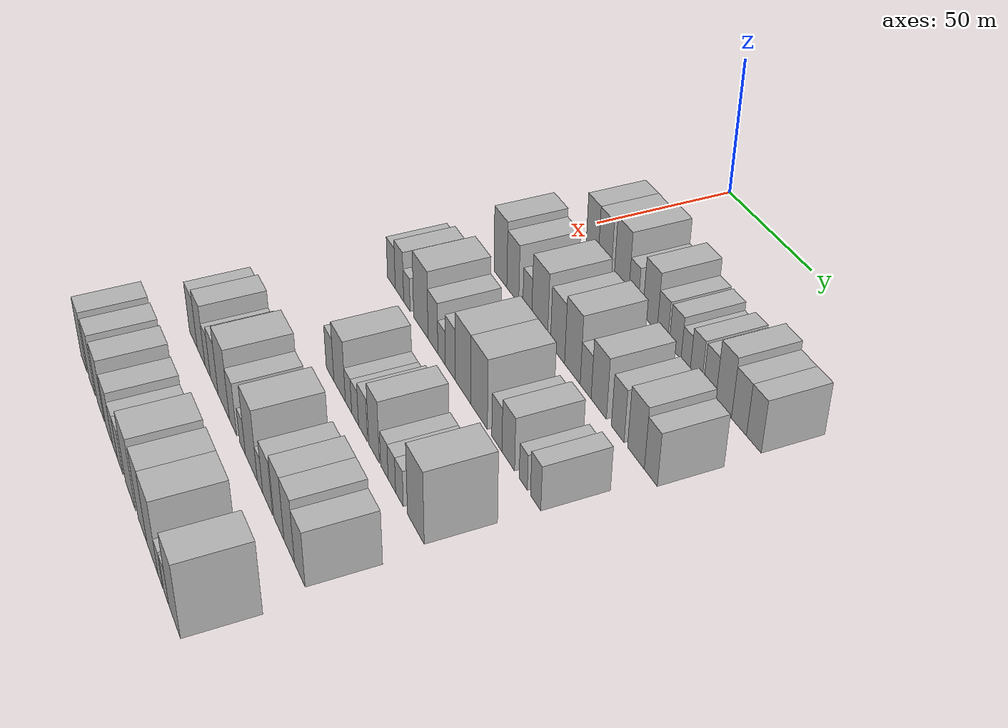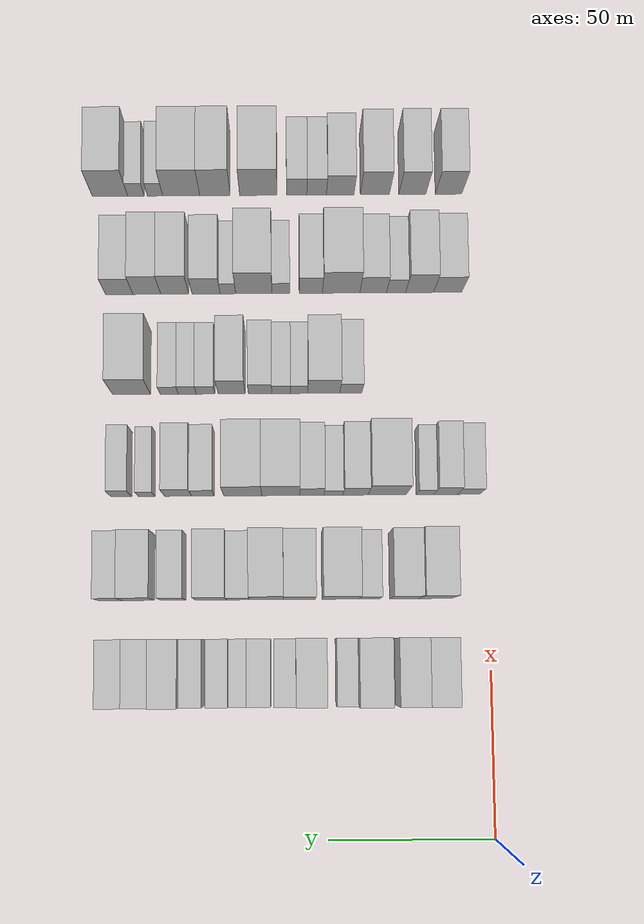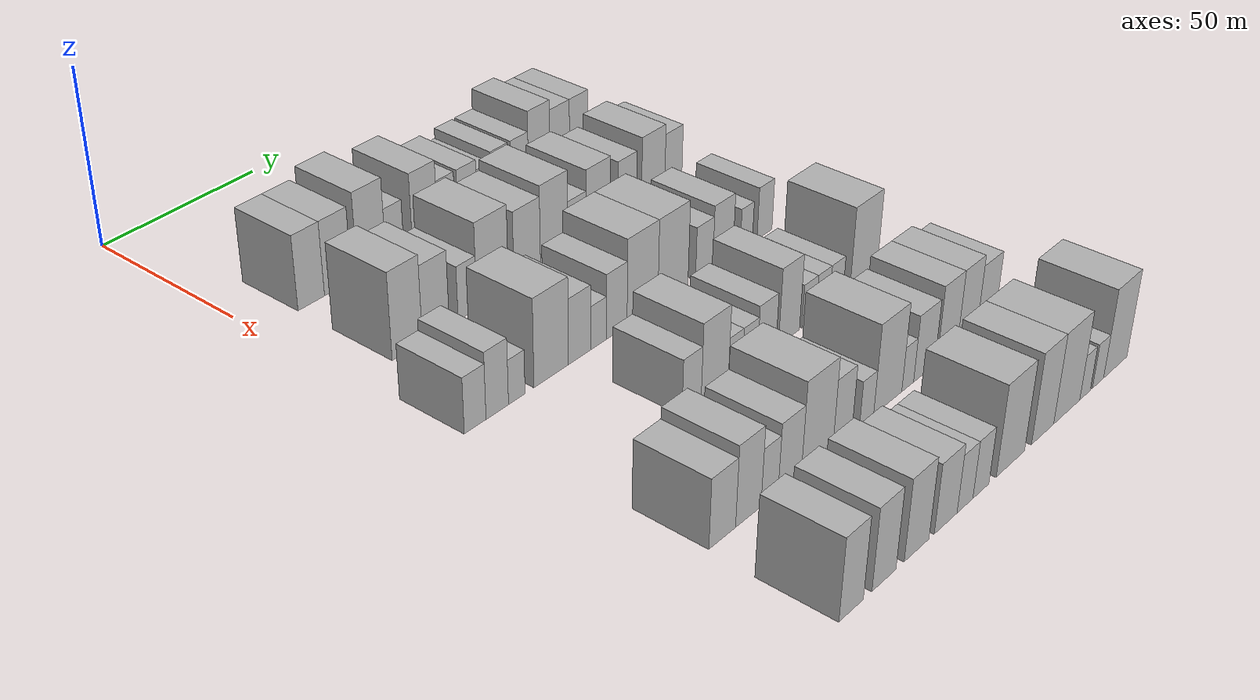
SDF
<sdf version="1.6">
 <world name="default">
  <model name="building_65">
   <static>1</static>
   <pose>50.0000 16.0996 0 0.000000 0.000000 0.000000</pose>
   <link name="link">
    <pose>0 0 10.50 0 0 0</pose>
    <collision name="collision"><geometry><box><size>20.0000 8.6231 21.0000</size></box></geometry></collision>
    <visual name="visual">
     <cast_shadows>0</cast_shadows>
     <geometry><box><size>20.0000 8.6231 21.0000</size></box></geometry>
     <material>
      <script>
       <uri>model://HANNAS_wall/materials/scripts</uri>
       <uri>model://HANNAS_wall/materials/textures</uri>
       <name>vrc/HANNAS_wall</name>
      </script>
     </material>
    </visual>
   </link>
  </model>
  <model name="building_66">
   <static>1</static>
   <pose>50.0000 24.9239 0 0.000000 0.000000 0.000000</pose>
   <link name="link">
    <pose>0 0 10.50 0 0 0</pose>
    <collision name="collision"><geometry><box><size>20.0000 9.0255 21.0000</size></box></geometry></collision>
    <visual name="visual">
     <cast_shadows>0</cast_shadows>
     <geometry><box><size>20.0000 9.0255 21.0000</size></box></geometry>
     <material>
      <script>
       <uri>model://HANNAS_wall/materials/scripts</uri>
       <uri>model://HANNAS_wall/materials/textures</uri>
       <name>vrc/HANNAS_wall</name>
      </script>
     </material>
    </visual>
   </link>
  </model>
  <model name="building_67">
   <static>1</static>
   <pose>50.0000 36.3254 0 0.000000 0.000000 0.000000</pose>
   <link name="link">
    <pose>0 0 12.00 0 0 0</pose>
    <collision name="collision"><geometry><box><size>20.0000 9.7776 24.0000</size></box></geometry></collision>
    <visual name="visual">
     <cast_shadows>0</cast_shadows>
     <geometry><box><size>20.0000 9.7776 24.0000</size></box></geometry>
     <material>
      <script>
       <uri>model://HANNAS_wall/materials/scripts</uri>
       <uri>model://HANNAS_wall/materials/textures</uri>
       <name>vrc/HANNAS_wall</name>
      </script>
     </material>
    </visual>
   </link>
  </model>
  <model name="building_68">
   <static>1</static>
   <pose>50.0000 44.3405 0 0.000000 0.000000 0.000000</pose>
   <link name="link">
    <pose>0 0 7.50 0 0 0</pose>
    <collision name="collision"><geometry><box><size>20.0000 6.2526 15.0000</size></box></geometry></collision>
    <visual name="visual">
     <cast_shadows>0</cast_shadows>
     <geometry><box><size>20.0000 6.2526 15.0000</size></box></geometry>
     <material>
      <script>
       <uri>model://HANNAS_wall/materials/scripts</uri>
       <uri>model://HANNAS_wall/materials/textures</uri>
       <name>vrc/HANNAS_wall</name>
      </script>
     </material>
    </visual>
   </link>
  </model>
  <model name="building_69">
   <static>1</static>
   <pose>50.0000 55.0183 0 0.000000 0.000000 0.000000</pose>
   <link name="link">
    <pose>0 0 10.50 0 0 0</pose>
    <collision name="collision"><geometry><box><size>20.0000 9.1030 21.0000</size></box></geometry></collision>
    <visual name="visual">
     <cast_shadows>0</cast_shadows>
     <geometry><box><size>20.0000 9.1030 21.0000</size></box></geometry>
     <material>
      <script>
       <uri>model://HANNAS_wall/materials/scripts</uri>
       <uri>model://HANNAS_wall/materials/textures</uri>
       <name>vrc/HANNAS_wall</name>
      </script>
     </material>
    </visual>
   </link>
  </model>
  <model name="building_70">
   <static>1</static>
   <pose>50.0000 62.8047 0 0.000000 0.000000 0.000000</pose>
   <link name="link">
    <pose>0 0 7.50 0 0 0</pose>
    <collision name="collision"><geometry><box><size>20.0000 6.4698 15.0000</size></box></geometry></collision>
    <visual name="visual">
     <cast_shadows>0</cast_shadows>
     <geometry><box><size>20.0000 6.4698 15.0000</size></box></geometry>
     <material>
      <script>
       <uri>model://HANNAS_wall/materials/scripts</uri>
       <uri>model://HANNAS_wall/materials/textures</uri>
       <name>vrc/HANNAS_wall</name>
      </script>
     </material>
    </visual>
   </link>
  </model>
  <model name="building_71">
   <static>1</static>
   <pose>50.0000 70.6055 0 0.000000 0.000000 0.000000</pose>
   <link name="link">
    <pose>0 0 7.50 0 0 0</pose>
    <collision name="collision"><geometry><box><size>20.0000 7.1319 15.0000</size></box></geometry></collision>
    <visual name="visual">
     <cast_shadows>0</cast_shadows>
     <geometry><box><size>20.0000 7.1319 15.0000</size></box></geometry>
     <material>
      <script>
       <uri>model://HANNAS_wall/materials/scripts</uri>
       <uri>model://HANNAS_wall/materials/textures</uri>
       <name>vrc/HANNAS_wall</name>
      </script>
     </material>
    </visual>
   </link>
  </model>
  <model name="building_72">
   <static>1</static>
   <pose>50.0000 76.8908 0 0.000000 0.000000 0.000000</pose>
   <link name="link">
    <pose>0 0 6.00 0 0 0</pose>
    <collision name="collision"><geometry><box><size>20.0000 5.4387 12.0000</size></box></geometry></collision>
    <visual name="visual">
     <cast_shadows>0</cast_shadows>
     <geometry><box><size>20.0000 5.4387 12.0000</size></box></geometry>
     <material>
      <script>
       <uri>model://HANNAS_wall/materials/scripts</uri>
       <uri>model://HANNAS_wall/materials/textures</uri>
       <name>vrc/HANNAS_wall</name>
      </script>
     </material>
    </visual>
   </link>
  </model>
  <model name="building_73">
   <static>1</static>
   <pose>50.0000 82.9509 0 0.000000 0.000000 0.000000</pose>
   <link name="link">
    <pose>0 0 7.50 0 0 0</pose>
    <collision name="collision"><geometry><box><size>20.0000 6.6815 15.0000</size></box></geometry></collision>
    <visual name="visual">
     <cast_shadows>0</cast_shadows>
     <geometry><box><size>20.0000 6.6815 15.0000</size></box></geometry>
     <material>
      <script>
       <uri>model://HANNAS_wall/materials/scripts</uri>
       <uri>model://HANNAS_wall/materials/textures</uri>
       <name>vrc/HANNAS_wall</name>
      </script>
     </material>
    </visual>
   </link>
  </model>
  <model name="building_74">
   <static>1</static>
   <pose>50.0000 90.7151 0 0.000000 0.000000 0.000000</pose>
   <link name="link">
    <pose>0 0 7.50 0 0 0</pose>
    <collision name="collision"><geometry><box><size>20.0000 6.8470 15.0000</size></box></geometry></collision>
    <visual name="visual">
     <cast_shadows>0</cast_shadows>
     <geometry><box><size>20.0000 6.8470 15.0000</size></box></geometry>
     <material>
      <script>
       <uri>model://HANNAS_wall/materials/scripts</uri>
       <uri>model://HANNAS_wall/materials/textures</uri>
       <name>vrc/HANNAS_wall</name>
      </script>
     </material>
    </visual>
   </link>
  </model>
  <model name="building_75">
   <static>1</static>
   <pose>50.0000 98.4572 0 0.000000 0.000000 0.000000</pose>
   <link name="link">
    <pose>0 0 10.50 0 0 0</pose>
    <collision name="collision"><geometry><box><size>20.0000 8.6371 21.0000</size></box></geometry></collision>
    <visual name="visual">
     <cast_shadows>0</cast_shadows>
     <geometry><box><size>20.0000 8.6371 21.0000</size></box></geometry>
     <material>
      <script>
       <uri>model://HANNAS_wall/materials/scripts</uri>
       <uri>model://HANNAS_wall/materials/textures</uri>
       <name>vrc/HANNAS_wall</name>
      </script>
     </material>
    </visual>
   </link>
  </model>
  <model name="building_76">
   <static>1</static>
   <pose>50.0000 106.7732 0 0.000000 0.000000 0.000000</pose>
   <link name="link">
    <pose>0 0 9.00 0 0 0</pose>
    <collision name="collision"><geometry><box><size>20.0000 7.9948 18.0000</size></box></geometry></collision>
    <visual name="visual">
     <cast_shadows>0</cast_shadows>
     <geometry><box><size>20.0000 7.9948 18.0000</size></box></geometry>
     <material>
      <script>
       <uri>model://HANNAS_wall/materials/scripts</uri>
       <uri>model://HANNAS_wall/materials/textures</uri>
       <name>vrc/HANNAS_wall</name>
      </script>
     </material>
    </visual>
   </link>
  </model>
  <model name="building_77">
   <static>1</static>
   <pose>50.0000 114.6159 0 0.000000 0.000000 0.000000</pose>
   <link name="link">
    <pose>0 0 9.00 0 0 0</pose>
    <collision name="collision"><geometry><box><size>20.0000 7.6906 18.0000</size></box></geometry></collision>
    <visual name="visual">
     <cast_shadows>0</cast_shadows>
     <geometry><box><size>20.0000 7.6906 18.0000</size></box></geometry>
     <material>
      <script>
       <uri>model://HANNAS_wall/materials/scripts</uri>
       <uri>model://HANNAS_wall/materials/textures</uri>
       <name>vrc/HANNAS_wall</name>
      </script>
     </material>
    </visual>
   </link>
  </model>
  <model name="building_190">
   <static>1</static>
   <pose>82.0000 16.7687 0 0.000000 0.000000 0.000000</pose>
   <link name="link">
    <pose>0 0 12.00 0 0 0</pose>
    <collision name="collision"><geometry><box><size>20.0000 9.9209 24.0000</size></box></geometry></collision>
    <visual name="visual">
     <cast_shadows>0</cast_shadows>
     <geometry><box><size>20.0000 9.9209 24.0000</size></box></geometry>
     <material>
      <script>
       <uri>model://HANNAS_wall/materials/scripts</uri>
       <uri>model://HANNAS_wall/materials/textures</uri>
       <name>vrc/HANNAS_wall</name>
      </script>
     </material>
    </visual>
   </link>
  </model>
  <model name="building_191">
   <static>1</static>
   <pose>82.0000 26.2301 0 0.000000 0.000000 0.000000</pose>
   <link name="link">
    <pose>0 0 10.50 0 0 0</pose>
    <collision name="collision"><geometry><box><size>20.0000 9.0018 21.0000</size></box></geometry></collision>
    <visual name="visual">
     <cast_shadows>0</cast_shadows>
     <geometry><box><size>20.0000 9.0018 21.0000</size></box></geometry>
     <material>
      <script>
       <uri>model://HANNAS_wall/materials/scripts</uri>
       <uri>model://HANNAS_wall/materials/textures</uri>
       <name>vrc/HANNAS_wall</name>
      </script>
     </material>
    </visual>
   </link>
  </model>
  <model name="building_192">
   <static>1</static>
   <pose>82.0000 36.9610 0 0.000000 0.000000 0.000000</pose>
   <link name="link">
    <pose>0 0 7.50 0 0 0</pose>
    <collision name="collision"><geometry><box><size>20.0000 6.4601 15.0000</size></box></geometry></collision>
    <visual name="visual">
     <cast_shadows>0</cast_shadows>
     <geometry><box><size>20.0000 6.4601 15.0000</size></box></geometry>
     <material>
      <script>
       <uri>model://HANNAS_wall/materials/scripts</uri>
       <uri>model://HANNAS_wall/materials/textures</uri>
       <name>vrc/HANNAS_wall</name>
      </script>
     </material>
    </visual>
   </link>
  </model>
  <model name="building_193">
   <static>1</static>
   <pose>82.0000 45.8005 0 0.000000 0.000000 0.000000</pose>
   <link name="link">
    <pose>0 0 12.00 0 0 0</pose>
    <collision name="collision"><geometry><box><size>20.0000 11.2189 24.0000</size></box></geometry></collision>
    <visual name="visual">
     <cast_shadows>0</cast_shadows>
     <geometry><box><size>20.0000 11.2189 24.0000</size></box></geometry>
     <material>
      <script>
       <uri>model://HANNAS_wall/materials/scripts</uri>
       <uri>model://HANNAS_wall/materials/textures</uri>
       <name>vrc/HANNAS_wall</name>
      </script>
     </material>
    </visual>
   </link>
  </model>
  <model name="building_194">
   <static>1</static>
   <pose>82.0000 58.2529 0 0.000000 0.000000 0.000000</pose>
   <link name="link">
    <pose>0 0 10.50 0 0 0</pose>
    <collision name="collision"><geometry><box><size>20.0000 9.6860 21.0000</size></box></geometry></collision>
    <visual name="visual">
     <cast_shadows>0</cast_shadows>
     <geometry><box><size>20.0000 9.6860 21.0000</size></box></geometry>
     <material>
      <script>
       <uri>model://HANNAS_wall/materials/scripts</uri>
       <uri>model://HANNAS_wall/materials/textures</uri>
       <name>vrc/HANNAS_wall</name>
      </script>
     </material>
    </visual>
   </link>
  </model>
  <model name="building_195">
   <static>1</static>
   <pose>82.0000 68.2267 0 0.000000 0.000000 0.000000</pose>
   <link name="link">
    <pose>0 0 12.00 0 0 0</pose>
    <collision name="collision"><geometry><box><size>20.0000 10.2616 24.0000</size></box></geometry></collision>
    <visual name="visual">
     <cast_shadows>0</cast_shadows>
     <geometry><box><size>20.0000 10.2616 24.0000</size></box></geometry>
     <material>
      <script>
       <uri>model://HANNAS_wall/materials/scripts</uri>
       <uri>model://HANNAS_wall/materials/textures</uri>
       <name>vrc/HANNAS_wall</name>
      </script>
     </material>
    </visual>
   </link>
  </model>
  <model name="building_196">
   <static>1</static>
   <pose>82.0000 76.8523 0 0.000000 0.000000 0.000000</pose>
   <link name="link">
    <pose>0 0 7.50 0 0 0</pose>
    <collision name="collision"><geometry><box><size>20.0000 6.9895 15.0000</size></box></geometry></collision>
    <visual name="visual">
     <cast_shadows>0</cast_shadows>
     <geometry><box><size>20.0000 6.9895 15.0000</size></box></geometry>
     <material>
      <script>
       <uri>model://HANNAS_wall/materials/scripts</uri>
       <uri>model://HANNAS_wall/materials/textures</uri>
       <name>vrc/HANNAS_wall</name>
      </script>
     </material>
    </visual>
   </link>
  </model>
  <model name="building_197">
   <static>1</static>
   <pose>82.0000 85.1146 0 0.000000 0.000000 0.000000</pose>
   <link name="link">
    <pose>0 0 10.50 0 0 0</pose>
    <collision name="collision"><geometry><box><size>20.0000 9.5353 21.0000</size></box></geometry></collision>
    <visual name="visual">
     <cast_shadows>0</cast_shadows>
     <geometry><box><size>20.0000 9.5353 21.0000</size></box></geometry>
     <material>
      <script>
       <uri>model://HANNAS_wall/materials/scripts</uri>
       <uri>model://HANNAS_wall/materials/textures</uri>
       <name>vrc/HANNAS_wall</name>
      </script>
     </material>
    </visual>
   </link>
  </model>
  <model name="building_198">
   <static>1</static>
   <pose>82.0000 96.6800 0 0.000000 0.000000 0.000000</pose>
   <link name="link">
    <pose>0 0 9.00 0 0 0</pose>
    <collision name="collision"><geometry><box><size>20.0000 7.5954 18.0000</size></box></geometry></collision>
    <visual name="visual">
     <cast_shadows>0</cast_shadows>
     <geometry><box><size>20.0000 7.5954 18.0000</size></box></geometry>
     <material>
      <script>
       <uri>model://HANNAS_wall/materials/scripts</uri>
       <uri>model://HANNAS_wall/materials/textures</uri>
       <name>vrc/HANNAS_wall</name>
      </script>
     </material>
    </visual>
   </link>
  </model>
  <model name="building_199">
   <static>1</static>
   <pose>82.0000 107.3014 0 0.000000 0.000000 0.000000</pose>
   <link name="link">
    <pose>0 0 10.50 0 0 0</pose>
    <collision name="collision"><geometry><box><size>20.0000 9.6474 21.0000</size></box></geometry></collision>
    <visual name="visual">
     <cast_shadows>0</cast_shadows>
     <geometry><box><size>20.0000 9.6474 21.0000</size></box></geometry>
     <material>
      <script>
       <uri>model://HANNAS_wall/materials/scripts</uri>
       <uri>model://HANNAS_wall/materials/textures</uri>
       <name>vrc/HANNAS_wall</name>
      </script>
     </material>
    </visual>
   </link>
  </model>
  <model name="building_200">
   <static>1</static>
   <pose>82.0000 115.7571 0 0.000000 0.000000 0.000000</pose>
   <link name="link">
    <pose>0 0 9.00 0 0 0</pose>
    <collision name="collision"><geometry><box><size>20.0000 7.2640 18.0000</size></box></geometry></collision>
    <visual name="visual">
     <cast_shadows>0</cast_shadows>
     <geometry><box><size>20.0000 7.2640 18.0000</size></box></geometry>
     <material>
      <script>
       <uri>model://HANNAS_wall/materials/scripts</uri>
       <uri>model://HANNAS_wall/materials/textures</uri>
       <name>vrc/HANNAS_wall</name>
      </script>
     </material>
    </visual>
   </link>
  </model>
  <model name="building_312">
   <static>1</static>
   <pose>114.0000 5.7682 0 0.000000 0.000000 0.000000</pose>
   <link name="link">
    <pose>0 0 7.50 0 0 0</pose>
    <collision name="collision"><geometry><box><size>20.0000 6.9353 15.0000</size></box></geometry></collision>
    <visual name="visual">
     <cast_shadows>0</cast_shadows>
     <geometry><box><size>20.0000 6.9353 15.0000</size></box></geometry>
     <material>
      <script>
       <uri>model://HANNAS_wall/materials/scripts</uri>
       <uri>model://HANNAS_wall/materials/textures</uri>
       <name>vrc/HANNAS_wall</name>
      </script>
     </material>
    </visual>
   </link>
  </model>
  <model name="building_313">
   <static>1</static>
   <pose>114.0000 12.8932 0 0.000000 0.000000 0.000000</pose>
   <link name="link">
    <pose>0 0 9.00 0 0 0</pose>
    <collision name="collision"><geometry><box><size>20.0000 7.3146 18.0000</size></box></geometry></collision>
    <visual name="visual">
     <cast_shadows>0</cast_shadows>
     <geometry><box><size>20.0000 7.3146 18.0000</size></box></geometry>
     <material>
      <script>
       <uri>model://HANNAS_wall/materials/scripts</uri>
       <uri>model://HANNAS_wall/materials/textures</uri>
       <name>vrc/HANNAS_wall</name>
      </script>
     </material>
    </visual>
   </link>
  </model>
  <model name="building_314">
   <static>1</static>
   <pose>114.0000 19.2916 0 0.000000 0.000000 0.000000</pose>
   <link name="link">
    <pose>0 0 6.00 0 0 0</pose>
    <collision name="collision"><geometry><box><size>20.0000 5.4822 12.0000</size></box></geometry></collision>
    <visual name="visual">
     <cast_shadows>0</cast_shadows>
     <geometry><box><size>20.0000 5.4822 12.0000</size></box></geometry>
     <material>
      <script>
       <uri>model://HANNAS_wall/materials/scripts</uri>
       <uri>model://HANNAS_wall/materials/textures</uri>
       <name>vrc/HANNAS_wall</name>
      </script>
     </material>
    </visual>
   </link>
  </model>
  <model name="building_315">
   <static>1</static>
   <pose>114.0000 30.9462 0 0.000000 0.000000 0.000000</pose>
   <link name="link">
    <pose>0 0 12.00 0 0 0</pose>
    <collision name="collision"><geometry><box><size>20.0000 11.8270 24.0000</size></box></geometry></collision>
    <visual name="visual">
     <cast_shadows>0</cast_shadows>
     <geometry><box><size>20.0000 11.8270 24.0000</size></box></geometry>
     <material>
      <script>
       <uri>model://HANNAS_wall/materials/scripts</uri>
       <uri>model://HANNAS_wall/materials/textures</uri>
       <name>vrc/HANNAS_wall</name>
      </script>
     </material>
    </visual>
   </link>
  </model>
  <model name="building_316">
   <static>1</static>
   <pose>114.0000 40.7575 0 0.000000 0.000000 0.000000</pose>
   <link name="link">
    <pose>0 0 9.00 0 0 0</pose>
    <collision name="collision"><geometry><box><size>20.0000 7.7956 18.0000</size></box></geometry></collision>
    <visual name="visual">
     <cast_shadows>0</cast_shadows>
     <geometry><box><size>20.0000 7.7956 18.0000</size></box></geometry>
     <material>
      <script>
       <uri>model://HANNAS_wall/materials/scripts</uri>
       <uri>model://HANNAS_wall/materials/textures</uri>
       <name>vrc/HANNAS_wall</name>
      </script>
     </material>
    </visual>
   </link>
  </model>
  <model name="building_317">
   <static>1</static>
   <pose>114.0000 47.5422 0 0.000000 0.000000 0.000000</pose>
   <link name="link">
    <pose>0 0 6.00 0 0 0</pose>
    <collision name="collision"><geometry><box><size>20.0000 5.7739 12.0000</size></box></geometry></collision>
    <visual name="visual">
     <cast_shadows>0</cast_shadows>
     <geometry><box><size>20.0000 5.7739 12.0000</size></box></geometry>
     <material>
      <script>
       <uri>model://HANNAS_wall/materials/scripts</uri>
       <uri>model://HANNAS_wall/materials/textures</uri>
       <name>vrc/HANNAS_wall</name>
      </script>
     </material>
    </visual>
   </link>
  </model>
  <model name="building_318">
   <static>1</static>
   <pose>114.0000 54.1829 0 0.000000 0.000000 0.000000</pose>
   <link name="link">
    <pose>0 0 9.00 0 0 0</pose>
    <collision name="collision"><geometry><box><size>20.0000 7.5075 18.0000</size></box></geometry></collision>
    <visual name="visual">
     <cast_shadows>0</cast_shadows>
     <geometry><box><size>20.0000 7.5075 18.0000</size></box></geometry>
     <material>
      <script>
       <uri>model://HANNAS_wall/materials/scripts</uri>
       <uri>model://HANNAS_wall/materials/textures</uri>
       <name>vrc/HANNAS_wall</name>
      </script>
     </material>
    </visual>
   </link>
  </model>
  <model name="building_319">
   <static>1</static>
   <pose>114.0000 63.7483 0 0.000000 0.000000 0.000000</pose>
   <link name="link">
    <pose>0 0 12.00 0 0 0</pose>
    <collision name="collision"><geometry><box><size>20.0000 11.6233 24.0000</size></box></geometry></collision>
    <visual name="visual">
     <cast_shadows>0</cast_shadows>
     <geometry><box><size>20.0000 11.6233 24.0000</size></box></geometry>
     <material>
      <script>
       <uri>model://HANNAS_wall/materials/scripts</uri>
       <uri>model://HANNAS_wall/materials/textures</uri>
       <name>vrc/HANNAS_wall</name>
      </script>
     </material>
    </visual>
   </link>
  </model>
  <model name="building_320">
   <static>1</static>
   <pose>114.0000 75.4170 0 0.000000 0.000000 0.000000</pose>
   <link name="link">
    <pose>0 0 12.00 0 0 0</pose>
    <collision name="collision"><geometry><box><size>20.0000 11.7142 24.0000</size></box></geometry></collision>
    <visual name="visual">
     <cast_shadows>0</cast_shadows>
     <geometry><box><size>20.0000 11.7142 24.0000</size></box></geometry>
     <material>
      <script>
       <uri>model://HANNAS_wall/materials/scripts</uri>
       <uri>model://HANNAS_wall/materials/textures</uri>
       <name>vrc/HANNAS_wall</name>
      </script>
     </material>
    </visual>
   </link>
  </model>
  <model name="building_321">
   <static>1</static>
   <pose>114.0000 87.7397 0 0.000000 0.000000 0.000000</pose>
   <link name="link">
    <pose>0 0 7.50 0 0 0</pose>
    <collision name="collision"><geometry><box><size>20.0000 6.9312 15.0000</size></box></geometry></collision>
    <visual name="visual">
     <cast_shadows>0</cast_shadows>
     <geometry><box><size>20.0000 6.9312 15.0000</size></box></geometry>
     <material>
      <script>
       <uri>model://HANNAS_wall/materials/scripts</uri>
       <uri>model://HANNAS_wall/materials/textures</uri>
       <name>vrc/HANNAS_wall</name>
      </script>
     </material>
    </visual>
   </link>
  </model>
  <model name="building_322">
   <static>1</static>
   <pose>114.0000 95.3710 0 0.000000 0.000000 0.000000</pose>
   <link name="link">
    <pose>0 0 9.00 0 0 0</pose>
    <collision name="collision"><geometry><box><size>20.0000 8.3314 18.0000</size></box></geometry></collision>
    <visual name="visual">
     <cast_shadows>0</cast_shadows>
     <geometry><box><size>20.0000 8.3314 18.0000</size></box></geometry>
     <material>
      <script>
       <uri>model://HANNAS_wall/materials/scripts</uri>
       <uri>model://HANNAS_wall/materials/textures</uri>
       <name>vrc/HANNAS_wall</name>
      </script>
     </material>
    </visual>
   </link>
  </model>
  <model name="building_323">
   <static>1</static>
   <pose>114.0000 105.1035 0 0.000000 0.000000 0.000000</pose>
   <link name="link">
    <pose>0 0 6.00 0 0 0</pose>
    <collision name="collision"><geometry><box><size>20.0000 5.1336 12.0000</size></box></geometry></collision>
    <visual name="visual">
     <cast_shadows>0</cast_shadows>
     <geometry><box><size>20.0000 5.1336 12.0000</size></box></geometry>
     <material>
      <script>
       <uri>model://HANNAS_wall/materials/scripts</uri>
       <uri>model://HANNAS_wall/materials/textures</uri>
       <name>vrc/HANNAS_wall</name>
      </script>
     </material>
    </visual>
   </link>
  </model>
  <model name="building_324">
   <static>1</static>
   <pose>114.0000 112.8692 0 0.000000 0.000000 0.000000</pose>
   <link name="link">
    <pose>0 0 7.50 0 0 0</pose>
    <collision name="collision"><geometry><box><size>20.0000 6.3978 15.0000</size></box></geometry></collision>
    <visual name="visual">
     <cast_shadows>0</cast_shadows>
     <geometry><box><size>20.0000 6.3978 15.0000</size></box></geometry>
     <material>
      <script>
       <uri>model://HANNAS_wall/materials/scripts</uri>
       <uri>model://HANNAS_wall/materials/textures</uri>
       <name>vrc/HANNAS_wall</name>
      </script>
     </material>
    </visual>
   </link>
  </model>
  <model name="building_430">
   <static>1</static>
   <pose>146.0000 41.7682 0 0.000000 0.000000 0.000000</pose>
   <link name="link">
    <pose>0 0 7.50 0 0 0</pose>
    <collision name="collision"><geometry><box><size>20.0000 6.8824 15.0000</size></box></geometry></collision>
    <visual name="visual">
     <cast_shadows>0</cast_shadows>
     <geometry><box><size>20.0000 6.8824 15.0000</size></box></geometry>
     <material>
      <script>
       <uri>model://HANNAS_wall/materials/scripts</uri>
       <uri>model://HANNAS_wall/materials/textures</uri>
       <name>vrc/HANNAS_wall</name>
      </script>
     </material>
    </visual>
   </link>
  </model>
  <model name="building_431">
   <static>1</static>
   <pose>146.0000 50.2211 0 0.000000 0.000000 0.000000</pose>
   <link name="link">
    <pose>0 0 10.50 0 0 0</pose>
    <collision name="collision"><geometry><box><size>20.0000 10.0234 21.0000</size></box></geometry></collision>
    <visual name="visual">
     <cast_shadows>0</cast_shadows>
     <geometry><box><size>20.0000 10.0234 21.0000</size></box></geometry>
     <material>
      <script>
       <uri>model://HANNAS_wall/materials/scripts</uri>
       <uri>model://HANNAS_wall/materials/textures</uri>
       <name>vrc/HANNAS_wall</name>
      </script>
     </material>
    </visual>
   </link>
  </model>
  <model name="building_432">
   <static>1</static>
   <pose>146.0000 57.8851 0 0.000000 0.000000 0.000000</pose>
   <link name="link">
    <pose>0 0 6.00 0 0 0</pose>
    <collision name="collision"><geometry><box><size>20.0000 5.3048 12.0000</size></box></geometry></collision>
    <visual name="visual">
     <cast_shadows>0</cast_shadows>
     <geometry><box><size>20.0000 5.3048 12.0000</size></box></geometry>
     <material>
      <script>
       <uri>model://HANNAS_wall/materials/scripts</uri>
       <uri>model://HANNAS_wall/materials/textures</uri>
       <name>vrc/HANNAS_wall</name>
      </script>
     </material>
    </visual>
   </link>
  </model>
  <model name="building_433">
   <static>1</static>
   <pose>146.0000 63.4358 0 0.000000 0.000000 0.000000</pose>
   <link name="link">
    <pose>0 0 6.00 0 0 0</pose>
    <collision name="collision"><geometry><box><size>20.0000 5.7965 12.0000</size></box></geometry></collision>
    <visual name="visual">
     <cast_shadows>0</cast_shadows>
     <geometry><box><size>20.0000 5.7965 12.0000</size></box></geometry>
     <material>
      <script>
       <uri>model://HANNAS_wall/materials/scripts</uri>
       <uri>model://HANNAS_wall/materials/textures</uri>
       <name>vrc/HANNAS_wall</name>
      </script>
     </material>
    </visual>
   </link>
  </model>
  <model name="building_434">
   <static>1</static>
   <pose>146.0000 69.9710 0 0.000000 0.000000 0.000000</pose>
   <link name="link">
    <pose>0 0 7.50 0 0 0</pose>
    <collision name="collision"><geometry><box><size>20.0000 7.2739 15.0000</size></box></geometry></collision>
    <visual name="visual">
     <cast_shadows>0</cast_shadows>
     <geometry><box><size>20.0000 7.2739 15.0000</size></box></geometry>
     <material>
      <script>
       <uri>model://HANNAS_wall/materials/scripts</uri>
       <uri>model://HANNAS_wall/materials/textures</uri>
       <name>vrc/HANNAS_wall</name>
      </script>
     </material>
    </visual>
   </link>
  </model>
  <model name="building_435">
   <static>1</static>
   <pose>146.0000 78.8143 0 0.000000 0.000000 0.000000</pose>
   <link name="link">
    <pose>0 0 10.50 0 0 0</pose>
    <collision name="collision"><geometry><box><size>20.0000 8.4127 21.0000</size></box></geometry></collision>
    <visual name="visual">
     <cast_shadows>0</cast_shadows>
     <geometry><box><size>20.0000 8.4127 21.0000</size></box></geometry>
     <material>
      <script>
       <uri>model://HANNAS_wall/materials/scripts</uri>
       <uri>model://HANNAS_wall/materials/textures</uri>
       <name>vrc/HANNAS_wall</name>
      </script>
     </material>
    </visual>
   </link>
  </model>
  <model name="building_436">
   <static>1</static>
   <pose>146.0000 86.8966 0 0.000000 0.000000 0.000000</pose>
   <link name="link">
    <pose>0 0 6.00 0 0 0</pose>
    <collision name="collision"><geometry><box><size>20.0000 5.7518 12.0000</size></box></geometry></collision>
    <visual name="visual">
     <cast_shadows>0</cast_shadows>
     <geometry><box><size>20.0000 5.7518 12.0000</size></box></geometry>
     <material>
      <script>
       <uri>model://HANNAS_wall/materials/scripts</uri>
       <uri>model://HANNAS_wall/materials/textures</uri>
       <name>vrc/HANNAS_wall</name>
      </script>
     </material>
    </visual>
   </link>
  </model>
  <model name="building_437">
   <static>1</static>
   <pose>146.0000 92.5713 0 0.000000 0.000000 0.000000</pose>
   <link name="link">
    <pose>0 0 6.00 0 0 0</pose>
    <collision name="collision"><geometry><box><size>20.0000 5.5975 12.0000</size></box></geometry></collision>
    <visual name="visual">
     <cast_shadows>0</cast_shadows>
     <geometry><box><size>20.0000 5.5975 12.0000</size></box></geometry>
     <material>
      <script>
       <uri>model://HANNAS_wall/materials/scripts</uri>
       <uri>model://HANNAS_wall/materials/textures</uri>
       <name>vrc/HANNAS_wall</name>
      </script>
     </material>
    </visual>
   </link>
  </model>
  <model name="building_438">
   <static>1</static>
   <pose>146.0000 98.2075 0 0.000000 0.000000 0.000000</pose>
   <link name="link">
    <pose>0 0 6.00 0 0 0</pose>
    <collision name="collision"><geometry><box><size>20.0000 5.6749 12.0000</size></box></geometry></collision>
    <visual name="visual">
     <cast_shadows>0</cast_shadows>
     <geometry><box><size>20.0000 5.6749 12.0000</size></box></geometry>
     <material>
      <script>
       <uri>model://HANNAS_wall/materials/scripts</uri>
       <uri>model://HANNAS_wall/materials/textures</uri>
       <name>vrc/HANNAS_wall</name>
      </script>
     </material>
    </visual>
   </link>
  </model>
  <model name="building_439">
   <static>1</static>
   <pose>146.0000 109.9426 0 0.000000 0.000000 0.000000</pose>
   <link name="link">
    <pose>0 0 12.00 0 0 0</pose>
    <collision name="collision"><geometry><box><size>20.0000 11.7954 24.0000</size></box></geometry></collision>
    <visual name="visual">
     <cast_shadows>0</cast_shadows>
     <geometry><box><size>20.0000 11.7954 24.0000</size></box></geometry>
     <material>
      <script>
       <uri>model://HANNAS_wall/materials/scripts</uri>
       <uri>model://HANNAS_wall/materials/textures</uri>
       <name>vrc/HANNAS_wall</name>
      </script>
     </material>
    </visual>
   </link>
  </model>
  <model name="building_551">
   <static>1</static>
   <pose>178.0000 10.9216 0 0.000000 0.000000 0.000000</pose>
   <link name="link">
    <pose>0 0 9.00 0 0 0</pose>
    <collision name="collision"><geometry><box><size>20.0000 8.9443 18.0000</size></box></geometry></collision>
    <visual name="visual">
     <cast_shadows>0</cast_shadows>
     <geometry><box><size>20.0000 8.9443 18.0000</size></box></geometry>
     <material>
      <script>
       <uri>model://HANNAS_wall/materials/scripts</uri>
       <uri>model://HANNAS_wall/materials/textures</uri>
       <name>vrc/HANNAS_wall</name>
      </script>
     </material>
    </visual>
   </link>
  </model>
  <model name="building_552">
   <static>1</static>
   <pose>178.0000 19.7667 0 0.000000 0.000000 0.000000</pose>
   <link name="link">
    <pose>0 0 10.50 0 0 0</pose>
    <collision name="collision"><geometry><box><size>20.0000 8.7459 21.0000</size></box></geometry></collision>
    <visual name="visual">
     <cast_shadows>0</cast_shadows>
     <geometry><box><size>20.0000 8.7459 21.0000</size></box></geometry>
     <material>
      <script>
       <uri>model://HANNAS_wall/materials/scripts</uri>
       <uri>model://HANNAS_wall/materials/textures</uri>
       <name>vrc/HANNAS_wall</name>
      </script>
     </material>
    </visual>
   </link>
  </model>
  <model name="building_553">
   <static>1</static>
   <pose>178.0000 27.1482 0 0.000000 0.000000 0.000000</pose>
   <link name="link">
    <pose>0 0 7.50 0 0 0</pose>
    <collision name="collision"><geometry><box><size>20.0000 6.0171 15.0000</size></box></geometry></collision>
    <visual name="visual">
     <cast_shadows>0</cast_shadows>
     <geometry><box><size>20.0000 6.0171 15.0000</size></box></geometry>
     <material>
      <script>
       <uri>model://HANNAS_wall/materials/scripts</uri>
       <uri>model://HANNAS_wall/materials/textures</uri>
       <name>vrc/HANNAS_wall</name>
      </script>
     </material>
    </visual>
   </link>
  </model>
  <model name="building_554">
   <static>1</static>
   <pose>178.0000 34.3550 0 0.000000 0.000000 0.000000</pose>
   <link name="link">
    <pose>0 0 9.00 0 0 0</pose>
    <collision name="collision"><geometry><box><size>20.0000 8.3965 18.0000</size></box></geometry></collision>
    <visual name="visual">
     <cast_shadows>0</cast_shadows>
     <geometry><box><size>20.0000 8.3965 18.0000</size></box></geometry>
     <material>
      <script>
       <uri>model://HANNAS_wall/materials/scripts</uri>
       <uri>model://HANNAS_wall/materials/textures</uri>
       <name>vrc/HANNAS_wall</name>
      </script>
     </material>
    </visual>
   </link>
  </model>
  <model name="building_555">
   <static>1</static>
   <pose>178.0000 44.4249 0 0.000000 0.000000 0.000000</pose>
   <link name="link">
    <pose>0 0 12.00 0 0 0</pose>
    <collision name="collision"><geometry><box><size>20.0000 11.7434 24.0000</size></box></geometry></collision>
    <visual name="visual">
     <cast_shadows>0</cast_shadows>
     <geometry><box><size>20.0000 11.7434 24.0000</size></box></geometry>
     <material>
      <script>
       <uri>model://HANNAS_wall/materials/scripts</uri>
       <uri>model://HANNAS_wall/materials/textures</uri>
       <name>vrc/HANNAS_wall</name>
      </script>
     </material>
    </visual>
   </link>
  </model>
  <model name="building_556">
   <static>1</static>
   <pose>178.0000 53.9416 0 0.000000 0.000000 0.000000</pose>
   <link name="link">
    <pose>0 0 9.00 0 0 0</pose>
    <collision name="collision"><geometry><box><size>20.0000 7.2901 18.0000</size></box></geometry></collision>
    <visual name="visual">
     <cast_shadows>0</cast_shadows>
     <geometry><box><size>20.0000 7.2901 18.0000</size></box></geometry>
     <material>
      <script>
       <uri>model://HANNAS_wall/materials/scripts</uri>
       <uri>model://HANNAS_wall/materials/textures</uri>
       <name>vrc/HANNAS_wall</name>
      </script>
     </material>
    </visual>
   </link>
  </model>
  <model name="building_557">
   <static>1</static>
   <pose>178.0000 63.3647 0 0.000000 0.000000 0.000000</pose>
   <link name="link">
    <pose>0 0 6.00 0 0 0</pose>
    <collision name="collision"><geometry><box><size>20.0000 5.5562 12.0000</size></box></geometry></collision>
    <visual name="visual">
     <cast_shadows>0</cast_shadows>
     <geometry><box><size>20.0000 5.5562 12.0000</size></box></geometry>
     <material>
      <script>
       <uri>model://HANNAS_wall/materials/scripts</uri>
       <uri>model://HANNAS_wall/materials/textures</uri>
       <name>vrc/HANNAS_wall</name>
      </script>
     </material>
    </visual>
   </link>
  </model>
  <model name="building_558">
   <static>1</static>
   <pose>178.0000 71.8272 0 0.000000 0.000000 0.000000</pose>
   <link name="link">
    <pose>0 0 12.00 0 0 0</pose>
    <collision name="collision"><geometry><box><size>20.0000 11.3687 24.0000</size></box></geometry></collision>
    <visual name="visual">
     <cast_shadows>0</cast_shadows>
     <geometry><box><size>20.0000 11.3687 24.0000</size></box></geometry>
     <material>
      <script>
       <uri>model://HANNAS_wall/materials/scripts</uri>
       <uri>model://HANNAS_wall/materials/textures</uri>
       <name>vrc/HANNAS_wall</name>
      </script>
     </material>
    </visual>
   </link>
  </model>
  <model name="building_559">
   <static>1</static>
   <pose>178.0000 79.9622 0 0.000000 0.000000 0.000000</pose>
   <link name="link">
    <pose>0 0 6.00 0 0 0</pose>
    <collision name="collision"><geometry><box><size>20.0000 4.9013 12.0000</size></box></geometry></collision>
    <visual name="visual">
     <cast_shadows>0</cast_shadows>
     <geometry><box><size>20.0000 4.9013 12.0000</size></box></geometry>
     <material>
      <script>
       <uri>model://HANNAS_wall/materials/scripts</uri>
       <uri>model://HANNAS_wall/materials/textures</uri>
       <name>vrc/HANNAS_wall</name>
      </script>
     </material>
    </visual>
   </link>
  </model>
  <model name="building_560">
   <static>1</static>
   <pose>178.0000 86.8298 0 0.000000 0.000000 0.000000</pose>
   <link name="link">
    <pose>0 0 9.00 0 0 0</pose>
    <collision name="collision"><geometry><box><size>20.0000 8.8338 18.0000</size></box></geometry></collision>
    <visual name="visual">
     <cast_shadows>0</cast_shadows>
     <geometry><box><size>20.0000 8.8338 18.0000</size></box></geometry>
     <material>
      <script>
       <uri>model://HANNAS_wall/materials/scripts</uri>
       <uri>model://HANNAS_wall/materials/textures</uri>
       <name>vrc/HANNAS_wall</name>
      </script>
     </material>
    </visual>
   </link>
  </model>
  <model name="building_561">
   <static>1</static>
   <pose>178.0000 96.6706 0 0.000000 0.000000 0.000000</pose>
   <link name="link">
    <pose>0 0 10.50 0 0 0</pose>
    <collision name="collision"><geometry><box><size>20.0000 8.8478 21.0000</size></box></geometry></collision>
    <visual name="visual">
     <cast_shadows>0</cast_shadows>
     <geometry><box><size>20.0000 8.8478 21.0000</size></box></geometry>
     <material>
      <script>
       <uri>model://HANNAS_wall/materials/scripts</uri>
       <uri>model://HANNAS_wall/materials/textures</uri>
       <name>vrc/HANNAS_wall</name>
      </script>
     </material>
    </visual>
   </link>
  </model>
  <model name="building_562">
   <static>1</static>
   <pose>178.0000 105.4645 0 0.000000 0.000000 0.000000</pose>
   <link name="link">
    <pose>0 0 10.50 0 0 0</pose>
    <collision name="collision"><geometry><box><size>20.0000 8.7400 21.0000</size></box></geometry></collision>
    <visual name="visual">
     <cast_shadows>0</cast_shadows>
     <geometry><box><size>20.0000 8.7400 21.0000</size></box></geometry>
     <material>
      <script>
       <uri>model://HANNAS_wall/materials/scripts</uri>
       <uri>model://HANNAS_wall/materials/textures</uri>
       <name>vrc/HANNAS_wall</name>
      </script>
     </material>
    </visual>
   </link>
  </model>
  <model name="building_563">
   <static>1</static>
   <pose>178.0000 114.1190 0 0.000000 0.000000 0.000000</pose>
   <link name="link">
    <pose>0 0 9.00 0 0 0</pose>
    <collision name="collision"><geometry><box><size>20.0000 8.5689 18.0000</size></box></geometry></collision>
    <visual name="visual">
     <cast_shadows>0</cast_shadows>
     <geometry><box><size>20.0000 8.5689 18.0000</size></box></geometry>
     <material>
      <script>
       <uri>model://HANNAS_wall/materials/scripts</uri>
       <uri>model://HANNAS_wall/materials/textures</uri>
       <name>vrc/HANNAS_wall</name>
      </script>
     </material>
    </visual>
   </link>
  </model>
  <model name="building_667">
   <static>1</static>
   <pose>210.0000 9.9507 0 0.000000 0.000000 0.000000</pose>
   <link name="link">
    <pose>0 0 10.50 0 0 0</pose>
    <collision name="collision"><geometry><box><size>20.0000 8.4141 21.0000</size></box></geometry></collision>
    <visual name="visual">
     <cast_shadows>0</cast_shadows>
     <geometry><box><size>20.0000 8.4141 21.0000</size></box></geometry>
     <material>
      <script>
       <uri>model://HANNAS_wall/materials/scripts</uri>
       <uri>model://HANNAS_wall/materials/textures</uri>
       <name>vrc/HANNAS_wall</name>
      </script>
     </material>
    </visual>
   </link>
  </model>
  <model name="building_668">
   <static>1</static>
   <pose>210.0000 21.4365 0 0.000000 0.000000 0.000000</pose>
   <link name="link">
    <pose>0 0 10.50 0 0 0</pose>
    <collision name="collision"><geometry><box><size>20.0000 8.5575 21.0000</size></box></geometry></collision>
    <visual name="visual">
     <cast_shadows>0</cast_shadows>
     <geometry><box><size>20.0000 8.5575 21.0000</size></box></geometry>
     <material>
      <script>
       <uri>model://HANNAS_wall/materials/scripts</uri>
       <uri>model://HANNAS_wall/materials/textures</uri>
       <name>vrc/HANNAS_wall</name>
      </script>
     </material>
    </visual>
   </link>
  </model>
  <model name="building_669">
   <static>1</static>
   <pose>210.0000 33.3239 0 0.000000 0.000000 0.000000</pose>
   <link name="link">
    <pose>0 0 10.50 0 0 0</pose>
    <collision name="collision"><geometry><box><size>20.0000 9.2172 21.0000</size></box></geometry></collision>
    <visual name="visual">
     <cast_shadows>0</cast_shadows>
     <geometry><box><size>20.0000 9.2172 21.0000</size></box></geometry>
     <material>
      <script>
       <uri>model://HANNAS_wall/materials/scripts</uri>
       <uri>model://HANNAS_wall/materials/textures</uri>
       <name>vrc/HANNAS_wall</name>
      </script>
     </material>
    </visual>
   </link>
  </model>
  <model name="building_670">
   <static>1</static>
   <pose>210.0000 44.3158 0 0.000000 0.000000 0.000000</pose>
   <link name="link">
    <pose>0 0 9.00 0 0 0</pose>
    <collision name="collision"><geometry><box><size>20.0000 8.7666 18.0000</size></box></geometry></collision>
    <visual name="visual">
     <cast_shadows>0</cast_shadows>
     <geometry><box><size>20.0000 8.7666 18.0000</size></box></geometry>
     <material>
      <script>
       <uri>model://HANNAS_wall/materials/scripts</uri>
       <uri>model://HANNAS_wall/materials/textures</uri>
       <name>vrc/HANNAS_wall</name>
      </script>
     </material>
    </visual>
   </link>
  </model>
  <model name="building_671">
   <static>1</static>
   <pose>210.0000 51.8170 0 0.000000 0.000000 0.000000</pose>
   <link name="link">
    <pose>0 0 7.50 0 0 0</pose>
    <collision name="collision"><geometry><box><size>20.0000 6.2359 15.0000</size></box></geometry></collision>
    <visual name="visual">
     <cast_shadows>0</cast_shadows>
     <geometry><box><size>20.0000 6.2359 15.0000</size></box></geometry>
     <material>
      <script>
       <uri>model://HANNAS_wall/materials/scripts</uri>
       <uri>model://HANNAS_wall/materials/textures</uri>
       <name>vrc/HANNAS_wall</name>
      </script>
     </material>
    </visual>
   </link>
  </model>
  <model name="building_672">
   <static>1</static>
   <pose>210.0000 58.1540 0 0.000000 0.000000 0.000000</pose>
   <link name="link">
    <pose>0 0 7.50 0 0 0</pose>
    <collision name="collision"><geometry><box><size>20.0000 6.4382 15.0000</size></box></geometry></collision>
    <visual name="visual">
     <cast_shadows>0</cast_shadows>
     <geometry><box><size>20.0000 6.4382 15.0000</size></box></geometry>
     <material>
      <script>
       <uri>model://HANNAS_wall/materials/scripts</uri>
       <uri>model://HANNAS_wall/materials/textures</uri>
       <name>vrc/HANNAS_wall</name>
      </script>
     </material>
    </visual>
   </link>
  </model>
  <model name="building_673">
   <static>1</static>
   <pose>210.0000 70.2945 0 0.000000 0.000000 0.000000</pose>
   <link name="link">
    <pose>0 0 12.00 0 0 0</pose>
    <collision name="collision"><geometry><box><size>20.0000 11.8427 24.0000</size></box></geometry></collision>
    <visual name="visual">
     <cast_shadows>0</cast_shadows>
     <geometry><box><size>20.0000 11.8427 24.0000</size></box></geometry>
     <material>
      <script>
       <uri>model://HANNAS_wall/materials/scripts</uri>
       <uri>model://HANNAS_wall/materials/textures</uri>
       <name>vrc/HANNAS_wall</name>
      </script>
     </material>
    </visual>
   </link>
  </model>
  <model name="building_674">
   <static>1</static>
   <pose>210.0000 84.0479 0 0.000000 0.000000 0.000000</pose>
   <link name="link">
    <pose>0 0 12.00 0 0 0</pose>
    <collision name="collision"><geometry><box><size>20.0000 9.6642 24.0000</size></box></geometry></collision>
    <visual name="visual">
     <cast_shadows>0</cast_shadows>
     <geometry><box><size>20.0000 9.6642 24.0000</size></box></geometry>
     <material>
      <script>
       <uri>model://HANNAS_wall/materials/scripts</uri>
       <uri>model://HANNAS_wall/materials/textures</uri>
       <name>vrc/HANNAS_wall</name>
      </script>
     </material>
    </visual>
   </link>
  </model>
  <model name="building_675">
   <static>1</static>
   <pose>210.0000 94.7509 0 0.000000 0.000000 0.000000</pose>
   <link name="link">
    <pose>0 0 12.00 0 0 0</pose>
    <collision name="collision"><geometry><box><size>20.0000 11.7418 24.0000</size></box></geometry></collision>
    <visual name="visual">
     <cast_shadows>0</cast_shadows>
     <geometry><box><size>20.0000 11.7418 24.0000</size></box></geometry>
     <material>
      <script>
       <uri>model://HANNAS_wall/materials/scripts</uri>
       <uri>model://HANNAS_wall/materials/textures</uri>
       <name>vrc/HANNAS_wall</name>
      </script>
     </material>
    </visual>
   </link>
  </model>
  <model name="building_676">
   <static>1</static>
   <pose>210.0000 103.0602 0 0.000000 0.000000 0.000000</pose>
   <link name="link">
    <pose>0 0 6.00 0 0 0</pose>
    <collision name="collision"><geometry><box><size>20.0000 4.8768 12.0000</size></box></geometry></collision>
    <visual name="visual">
     <cast_shadows>0</cast_shadows>
     <geometry><box><size>20.0000 4.8768 12.0000</size></box></geometry>
     <material>
      <script>
       <uri>model://HANNAS_wall/materials/scripts</uri>
       <uri>model://HANNAS_wall/materials/textures</uri>
       <name>vrc/HANNAS_wall</name>
      </script>
     </material>
    </visual>
   </link>
  </model>
  <model name="building_677">
   <static>1</static>
   <pose>210.0000 109.1117 0 0.000000 0.000000 0.000000</pose>
   <link name="link">
    <pose>0 0 6.00 0 0 0</pose>
    <collision name="collision"><geometry><box><size>20.0000 5.2261 12.0000</size></box></geometry></collision>
    <visual name="visual">
     <cast_shadows>0</cast_shadows>
     <geometry><box><size>20.0000 5.2261 12.0000</size></box></geometry>
     <material>
      <script>
       <uri>model://HANNAS_wall/materials/scripts</uri>
       <uri>model://HANNAS_wall/materials/textures</uri>
       <name>vrc/HANNAS_wall</name>
      </script>
     </material>
    </visual>
   </link>
  </model>
  <model name="building_678">
   <static>1</static>
   <pose>210.0000 117.3371 0 0.000000 0.000000 0.000000</pose>
   <link name="link">
    <pose>0 0 12.00 0 0 0</pose>
    <collision name="collision"><geometry><box><size>20.0000 11.2246 24.0000</size></box></geometry></collision>
    <visual name="visual">
     <cast_shadows>0</cast_shadows>
     <geometry><box><size>20.0000 11.2246 24.0000</size></box></geometry>
     <material>
      <script>
       <uri>model://HANNAS_wall/materials/scripts</uri>
       <uri>model://HANNAS_wall/materials/textures</uri>
       <name>vrc/HANNAS_wall</name>
      </script>
     </material>
    </visual>
   </link>
  </model>
 </world>
</sdf>
